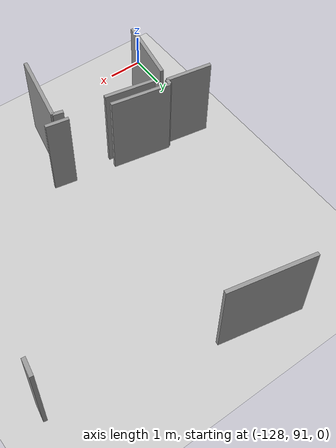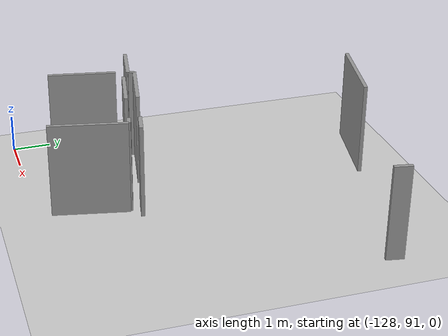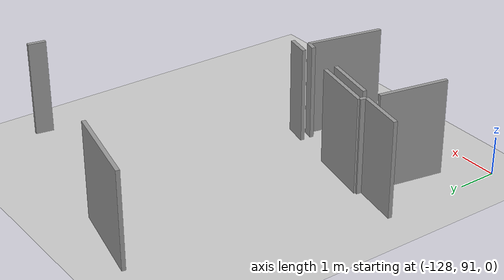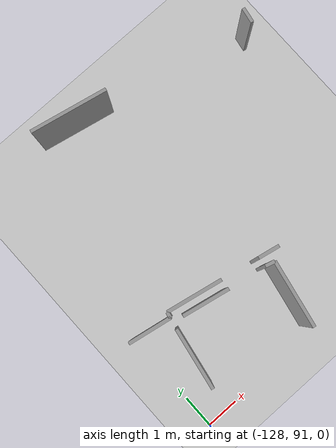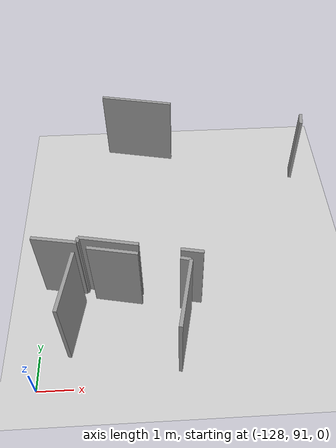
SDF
<sdf version="1.6">
 <world name="default">
  <model name="ground_plane">
   <static>1</static>
   <link name="link">
    <collision name="collision">
     <geometry><plane><normal>0 0 1</normal><size>100 100</size></plane></geometry>
     <surface><friction><ode><mu>100</mu><mu2>50</mu2></ode></friction></surface>
    </collision>
    <visual name="visual">
     <cast_shadows>0</cast_shadows>
     <geometry><plane><normal>0 0 1</normal><size>100 100</size></plane></geometry>
     <material>
      <script><uri>file://media/materials/scripts/gazebo.material</uri><name>Gazebo/Grey</name></script>
     </material>
    </visual>
   </link>
  </model>
  <model name="0510045926_A-40">
   <static>1</static>
   <link name="Wall_273">
    <collision name="Wall_273_Collision">
     <geometry><box><size>1.81652417053 0.1 2.5</size></box></geometry>
     <pose>0.908262085266 0 1.25 0 0 0</pose>
    </collision>
    <visual name="Wall_273_Visual">
     <pose>0.908262085266 0 1.25 0 0 0</pose>
     <geometry><box><size>1.81652417053 0.1 2.5</size></box></geometry>
     <material>
      <script><uri>file://media/materials/scripts/gazebo.material</uri><name>Gazebo/Grey</name></script>
      <ambient>1 1 1 1</ambient>
     </material>
    </visual>
    <pose>7.10231433594 -7.37775013802 0 0 0 -1.74821263606</pose>
   </link>
   <link name="Wall_276">
    <collision name="Wall_276_Collision">
     <geometry><box><size>1.40866040445 0.1 2.5</size></box></geometry>
     <pose>0.704330202225 0 1.25 0 0 0</pose>
    </collision>
    <visual name="Wall_276_Visual">
     <pose>0.704330202225 0 1.25 0 0 0</pose>
     <geometry><box><size>1.40866040445 0.1 2.5</size></box></geometry>
     <material>
      <script><uri>file://media/materials/scripts/gazebo.material</uri><name>Gazebo/Grey</name></script>
      <ambient>1 1 1 1</ambient>
     </material>
    </visual>
    <pose>7.45159059036 -7.23788733556 0 0 0 -0.194391716886</pose>
   </link>
   <link name="Wall_277">
    <collision name="Wall_277_Collision">
     <geometry><box><size>0.284187632451 0.1 2.5</size></box></geometry>
     <pose>0.142093816225 0 1.25 0 0 0</pose>
    </collision>
    <visual name="Wall_277_Visual">
     <pose>0.142093816225 0 1.25 0 0 0</pose>
     <geometry><box><size>0.284187632451 0.1 2.5</size></box></geometry>
     <material>
      <script><uri>file://media/materials/scripts/gazebo.material</uri><name>Gazebo/Grey</name></script>
      <ambient>1 1 1 1</ambient>
     </material>
    </visual>
    <pose>9.94881427565 -7.7100194818 0 0 0 -0.252777465151</pose>
   </link>
   <link name="Wall_278">
    <collision name="Wall_278_Collision">
     <geometry><box><size>2.00672974568 0.1 2.5</size></box></geometry>
     <pose>1.00336487284 0 1.25 0 0 0</pose>
    </collision>
    <visual name="Wall_278_Visual">
     <pose>1.00336487284 0 1.25 0 0 0</pose>
     <geometry><box><size>2.00672974568 0.1 2.5</size></box></geometry>
     <material>
      <script><uri>file://media/materials/scripts/gazebo.material</uri><name>Gazebo/Grey</name></script>
      <ambient>1 1 1 1</ambient>
     </material>
    </visual>
    <pose>10.2239708598 -7.78109313822 0 0 0 -1.7656863723</pose>
   </link>
   <link name="Wall_283">
    <collision name="Wall_283_Collision">
     <geometry><box><size>2.33047137371 0.1 2.5</size></box></geometry>
     <pose>1.16523568686 0 1.25 0 0 0</pose>
    </collision>
    <visual name="Wall_283_Visual">
     <pose>1.16523568686 0 1.25 0 0 0</pose>
     <geometry><box><size>2.33047137371 0.1 2.5</size></box></geometry>
     <material>
      <script><uri>file://media/materials/scripts/gazebo.material</uri><name>Gazebo/Grey</name></script>
      <ambient>1 1 1 1</ambient>
     </material>
    </visual>
    <pose>7.68131080129 -0.851437020491 0 0 0 -0.204369960417</pose>
   </link>
   <link name="Wall_284">
    <collision name="Wall_284_Collision">
     <geometry><box><size>0.461457808269 0.1 2.5</size></box></geometry>
     <pose>0.230728904134 0 1.25 0 0 0</pose>
    </collision>
    <visual name="Wall_284_Visual">
     <pose>0.230728904134 0 1.25 0 0 0</pose>
     <geometry><box><size>0.461457808269 0.1 2.5</size></box></geometry>
     <material>
      <script><uri>file://media/materials/scripts/gazebo.material</uri><name>Gazebo/Grey</name></script>
      <ambient>1 1 1 1</ambient>
     </material>
    </visual>
    <pose>14.2365864338 -2.12137096007 0 0 0 -1.74383067699</pose>
   </link>
   <link name="Wall_287">
    <collision name="Wall_287_Collision">
     <geometry><box><size>0.632370181192 0.1 2.5</size></box></geometry>
     <pose>0.316185090596 0 1.25 0 0 0</pose>
    </collision>
    <visual name="Wall_287_Visual">
     <pose>0.316185090596 0 1.25 0 0 0</pose>
     <geometry><box><size>0.632370181192 0.1 2.5</size></box></geometry>
     <material>
      <script><uri>file://media/materials/scripts/gazebo.material</uri><name>Gazebo/Grey</name></script>
      <ambient>1 1 1 1</ambient>
     </material>
    </visual>
    <pose>10.5854311696 -7.55467277562 0 0 0 2.94648001507</pose>
   </link>
   <link name="Wall_288">
    <collision name="Wall_288_Collision">
     <geometry><box><size>1.66847711984 0.1 2.5</size></box></geometry>
     <pose>0.834238559922 0 1.25 0 0 0</pose>
    </collision>
    <visual name="Wall_288_Visual">
     <pose>0.834238559922 0 1.25 0 0 0</pose>
     <geometry><box><size>1.66847711984 0.1 2.5</size></box></geometry>
     <material>
      <script><uri>file://media/materials/scripts/gazebo.material</uri><name>Gazebo/Grey</name></script>
      <ambient>1 1 1 1</ambient>
     </material>
    </visual>
    <pose>8.8512339529 -7.20488885222 0 0 0 2.9485531946</pose>
   </link>
   <link name="Wall_289">
    <collision name="Wall_289_Collision">
     <geometry><box><size>0.172458072269 0.1 2.5</size></box></geometry>
     <pose>0.0862290361344 0 1.25 0 0 0</pose>
    </collision>
    <visual name="Wall_289_Visual">
     <pose>0.0862290361344 0 1.25 0 0 0</pose>
     <geometry><box><size>0.172458072269 0.1 2.5</size></box></geometry>
     <material>
      <script><uri>file://media/materials/scripts/gazebo.material</uri><name>Gazebo/Grey</name></script>
      <ambient>1 1 1 1</ambient>
     </material>
    </visual>
    <pose>7.21374767583 -6.88480356384 0 0 0 -1.7543359605</pose>
   </link>
   <link name="Wall_290">
    <collision name="Wall_290_Collision">
     <geometry><box><size>1.28112566637 0.1 2.5</size></box></geometry>
     <pose>0.640562833186 0 1.25 0 0 0</pose>
    </collision>
    <visual name="Wall_290_Visual">
     <pose>0.640562833186 0 1.25 0 0 0</pose>
     <geometry><box><size>1.28112566637 0.1 2.5</size></box></geometry>
     <material>
      <script><uri>file://media/materials/scripts/gazebo.material</uri><name>Gazebo/Grey</name></script>
      <ambient>1 1 1 1</ambient>
     </material>
    </visual>
    <pose>7.18227219941 -7.0543650013 0 0 0 2.964326516</pose>
   </link>
   <pose>-133.95 101.113233661 0 0 0 0</pose>
  </model>
 </world>
</sdf>
